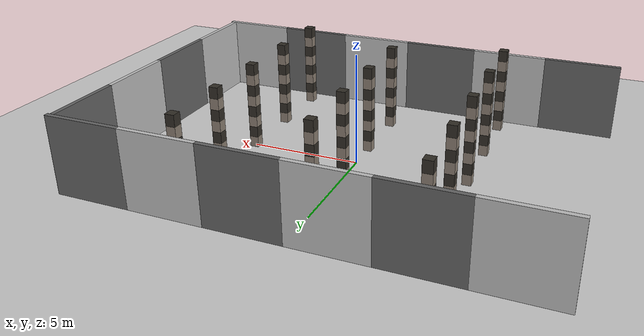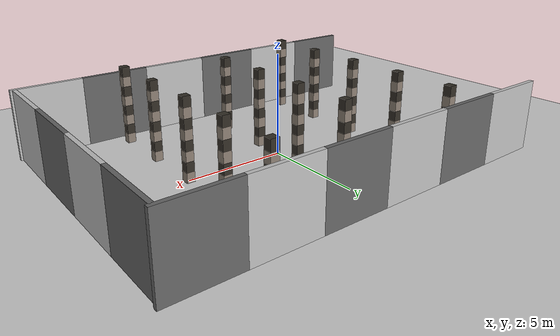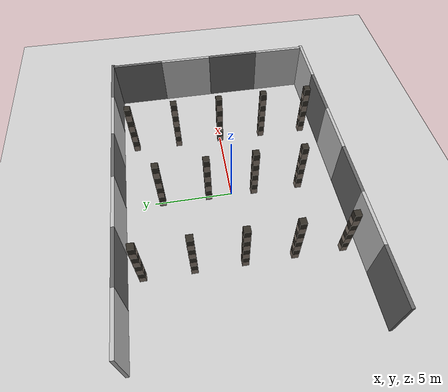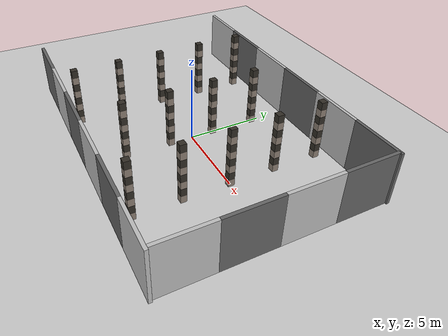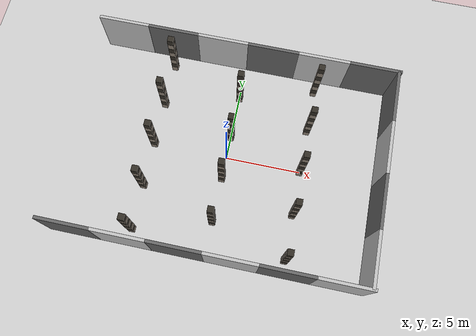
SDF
<sdf version="1.9">
 <world name="warehouse">
  <physics type="ode">
   <max_step_size>0.004</max_step_size>
   <real_time_factor>1.0</real_time_factor>
   <real_time_update_rate>250</real_time_update_rate>
  </physics>
  <gravity>0 0 -9.8</gravity>
  <magnetic_field>6e-06 2.3e-05 -4.2e-05</magnetic_field>
  <atmosphere type="adiabatic"/>
  <scene>
   <grid>false</grid>
   <ambient>0.4 0.4 0.4 1</ambient>
   <background>0.7 0.7 0.7 1</background>
   <shadows>true</shadows>
  </scene>
  <model name="ground_plane">
   <static>true</static>
   <link name="link">
    <collision name="collision">
     <geometry><plane><normal>0 0 1</normal><size>1 1</size></plane></geometry>
    </collision>
    <visual name="visual">
     <geometry><plane><normal>0 0 1</normal><size>100 100</size></plane></geometry>
     <material>
      <ambient>0.8 0.8 0.8 1</ambient>
      <diffuse>0.8 0.8 0.8 1</diffuse>
      <specular>0.8 0.8 0.8 1</specular>
     </material>
    </visual>
    <inertial>
     <mass>1</mass>
     <inertia><ixx>1</ixx><ixy>0</ixy><ixz>0</ixz><iyy>1</iyy><iyz>0</iyz><izz>1</izz></inertia>
    </inertial>
   </link>
  </model>
  <light name="sunUTC" type="directional">
   <pose>0 0 500 0 -0 0</pose>
   <intensity>1</intensity>
   <direction>0.001 0.625 -0.78</direction>
   <diffuse>0.904 0.904 0.904 1</diffuse>
   <specular>0.271 0.271 0.271 1</specular>
   <attenuation><range>2000</range><linear>0</linear><constant>1</constant><quadratic>0</quadratic></attenuation>
   <spot><inner_angle>0</inner_angle><outer_angle>0</outer_angle><falloff>0</falloff></spot>
  </light>
  <spherical_coordinates>
   <surface_model>EARTH_WGS84</surface_model>
   <world_frame_orientation>ENU</world_frame_orientation>
   <latitude_deg>47.397971057728974</latitude_deg>
   <longitude_deg>8.546163739800146</longitude_deg>
   <elevation>0</elevation>
  </spherical_coordinates>
  <model name="warehouse_walls">
   <static>true</static>
   <link name="north">
    <pose>0 7 1.75 0 0 0</pose>
    <collision name="collision"><geometry><box><size>20.4 0.2 3.5</size></box></geometry></collision>
    <visual name="band0">
     <pose>-8.5 0 0 0 0 0</pose>
     <geometry><box><size>3.4 0.2 3.5</size></box></geometry>
     <material><ambient>0.75 0.75 0.75 1</ambient><diffuse>0.75 0.75 0.75 1</diffuse></material>
    </visual>
    <visual name="band1">
     <pose>-5.1 0 0 0 0 0</pose>
     <geometry><box><size>3.4 0.2 3.5</size></box></geometry>
     <material><ambient>0.4 0.4 0.4 1</ambient><diffuse>0.4 0.4 0.4 1</diffuse></material>
    </visual>
    <visual name="band2">
     <pose>-1.7 0 0 0 0 0</pose>
     <geometry><box><size>3.4 0.2 3.5</size></box></geometry>
     <material><ambient>0.75 0.75 0.75 1</ambient><diffuse>0.75 0.75 0.75 1</diffuse></material>
    </visual>
    <visual name="band3">
     <pose>1.7 0 0 0 0 0</pose>
     <geometry><box><size>3.4 0.2 3.5</size></box></geometry>
     <material><ambient>0.4 0.4 0.4 1</ambient><diffuse>0.4 0.4 0.4 1</diffuse></material>
    </visual>
    <visual name="band4">
     <pose>5.1 0 0 0 0 0</pose>
     <geometry><box><size>3.4 0.2 3.5</size></box></geometry>
     <material><ambient>0.75 0.75 0.75 1</ambient><diffuse>0.75 0.75 0.75 1</diffuse></material>
    </visual>
    <visual name="band5">
     <pose>8.5 0 0 0 0 0</pose>
     <geometry><box><size>3.4 0.2 3.5</size></box></geometry>
     <material><ambient>0.4 0.4 0.4 1</ambient><diffuse>0.4 0.4 0.4 1</diffuse></material>
    </visual>
   </link>
   <link name="south">
    <pose>0 -7 1.75 0 0 0</pose>
    <collision name="collision"><geometry><box><size>20.4 0.2 3.5</size></box></geometry></collision>
    <visual name="band0">
     <pose>-8.5 0 0 0 0 0</pose>
     <geometry><box><size>3.4 0.2 3.5</size></box></geometry>
     <material><ambient>0.4 0.4 0.4 1</ambient><diffuse>0.4 0.4 0.4 1</diffuse></material>
    </visual>
    <visual name="band1">
     <pose>-5.1 0 0 0 0 0</pose>
     <geometry><box><size>3.4 0.2 3.5</size></box></geometry>
     <material><ambient>0.75 0.75 0.75 1</ambient><diffuse>0.75 0.75 0.75 1</diffuse></material>
    </visual>
    <visual name="band2">
     <pose>-1.7 0 0 0 0 0</pose>
     <geometry><box><size>3.4 0.2 3.5</size></box></geometry>
     <material><ambient>0.4 0.4 0.4 1</ambient><diffuse>0.4 0.4 0.4 1</diffuse></material>
    </visual>
    <visual name="band3">
     <pose>1.7 0 0 0 0 0</pose>
     <geometry><box><size>3.4 0.2 3.5</size></box></geometry>
     <material><ambient>0.75 0.75 0.75 1</ambient><diffuse>0.75 0.75 0.75 1</diffuse></material>
    </visual>
    <visual name="band4">
     <pose>5.1 0 0 0 0 0</pose>
     <geometry><box><size>3.4 0.2 3.5</size></box></geometry>
     <material><ambient>0.4 0.4 0.4 1</ambient><diffuse>0.4 0.4 0.4 1</diffuse></material>
    </visual>
    <visual name="band5">
     <pose>8.5 0 0 0 0 0</pose>
     <geometry><box><size>3.4 0.2 3.5</size></box></geometry>
     <material><ambient>0.75 0.75 0.75 1</ambient><diffuse>0.75 0.75 0.75 1</diffuse></material>
    </visual>
   </link>
   <link name="east">
    <pose>10 0 1.75 0 0 0</pose>
    <collision name="collision"><geometry><box><size>0.2 14 3.5</size></box></geometry></collision>
    <visual name="band0">
     <pose>0 -5.25 0 0 0 0</pose>
     <geometry><box><size>0.2 3.5 3.5</size></box></geometry>
     <material><ambient>0.75 0.75 0.75 1</ambient><diffuse>0.75 0.75 0.75 1</diffuse></material>
    </visual>
    <visual name="band1">
     <pose>0 -1.75 0 0 0 0</pose>
     <geometry><box><size>0.2 3.5 3.5</size></box></geometry>
     <material><ambient>0.4 0.4 0.4 1</ambient><diffuse>0.4 0.4 0.4 1</diffuse></material>
    </visual>
    <visual name="band2">
     <pose>0 1.75 0 0 0 0</pose>
     <geometry><box><size>0.2 3.5 3.5</size></box></geometry>
     <material><ambient>0.75 0.75 0.75 1</ambient><diffuse>0.75 0.75 0.75 1</diffuse></material>
    </visual>
    <visual name="band3">
     <pose>0 5.25 0 0 0 0</pose>
     <geometry><box><size>0.2 3.5 3.5</size></box></geometry>
     <material><ambient>0.4 0.4 0.4 1</ambient><diffuse>0.4 0.4 0.4 1</diffuse></material>
    </visual>
   </link>
  </model>
  <include><uri>model://warehouse_pillar</uri><name>pillar_a0</name><pose>-5 -6.0 2.0 0 0 0</pose></include>
  <include><uri>model://warehouse_pillar</uri><name>pillar_a1</name><pose>-5 -3.0 2.0 0 0 0</pose></include>
  <include><uri>model://warehouse_pillar</uri><name>pillar_a2</name><pose>-5  0.0 2.0 0 0 0</pose></include>
  <include><uri>model://warehouse_pillar</uri><name>pillar_a3</name><pose>-5  3.0 2.0 0 0 0</pose></include>
  <include><uri>model://warehouse_pillar</uri><name>pillar_a4</name><pose>-5  6.0 2.0 0 0 0</pose></include>
  <include><uri>model://warehouse_pillar</uri><name>pillar_b0</name><pose>0 -4.5 2.0 0 0 0</pose></include>
  <include><uri>model://warehouse_pillar</uri><name>pillar_b1</name><pose>0 -1.5 2.0 0 0 0</pose></include>
  <include><uri>model://warehouse_pillar</uri><name>pillar_b2</name><pose>0  1.5 2.0 0 0 0</pose></include>
  <include><uri>model://warehouse_pillar</uri><name>pillar_b3</name><pose>0  4.5 2.0 0 0 0</pose></include>
  <include><uri>model://warehouse_pillar</uri><name>pillar_c0</name><pose>5 -6.0 2.0 0 0 0</pose></include>
  <include><uri>model://warehouse_pillar</uri><name>pillar_c1</name><pose>5 -3.0 2.0 0 0 0</pose></include>
  <include><uri>model://warehouse_pillar</uri><name>pillar_c2</name><pose>5  0.0 2.0 0 0 0</pose></include>
  <include><uri>model://warehouse_pillar</uri><name>pillar_c3</name><pose>5  3.0 2.0 0 0 0</pose></include>
  <include><uri>model://warehouse_pillar</uri><name>pillar_c4</name><pose>5  6.0 2.0 0 0 0</pose></include>
 </world>
</sdf>

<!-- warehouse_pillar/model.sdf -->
<sdf version='1.9'>
  <model name='warehouse_pillar'>
    <static>true</static>
    <link name='link'>
      <collision name='collision'>
        <geometry>
          <box><size>0.4 0.4 4.0</size></box>
        </geometry>
      </collision>
      <visual name='band0'>
        <pose>0 0 -1.75 0 0 0</pose>
        <geometry><box><size>0.4 0.4 0.5</size></box></geometry>
        <material>
          <ambient>0.55 0.5 0.45 1</ambient>
          <diffuse>0.55 0.5 0.45 1</diffuse>
          <specular>0.2 0.2 0.2 1</specular>
        </material>
      </visual>
      <visual name='band1'>
        <pose>0 0 -1.25 0 0 0</pose>
        <geometry><box><size>0.4 0.4 0.5</size></box></geometry>
        <material>
          <ambient>0.2 0.18 0.15 1</ambient>
          <diffuse>0.2 0.18 0.15 1</diffuse>
          <specular>0.2 0.2 0.2 1</specular>
        </material>
      </visual>
      <visual name='band2'>
        <pose>0 0 -0.75 0 0 0</pose>
        <geometry><box><size>0.4 0.4 0.5</size></box></geometry>
        <material>
          <ambient>0.55 0.5 0.45 1</ambient>
          <diffuse>0.55 0.5 0.45 1</diffuse>
          <specular>0.2 0.2 0.2 1</specular>
        </material>
      </visual>
      <visual name='band3'>
        <pose>0 0 -0.25 0 0 0</pose>
        <geometry><box><size>0.4 0.4 0.5</size></box></geometry>
        <material>
          <ambient>0.2 0.18 0.15 1</ambient>
          <diffuse>0.2 0.18 0.15 1</diffuse>
          <specular>0.2 0.2 0.2 1</specular>
        </material>
      </visual>
      <visual name='band4'>
        <pose>0 0 0.25 0 0 0</pose>
        <geometry><box><size>0.4 0.4 0.5</size></box></geometry>
        <material>
          <ambient>0.55 0.5 0.45 1</ambient>
          <diffuse>0.55 0.5 0.45 1</diffuse>
          <specular>0.2 0.2 0.2 1</specular>
        </material>
      </visual>
      <visual name='band5'>
        <pose>0 0 0.75 0 0 0</pose>
        <geometry><box><size>0.4 0.4 0.5</size></box></geometry>
        <material>
          <ambient>0.2 0.18 0.15 1</ambient>
          <diffuse>0.2 0.18 0.15 1</diffuse>
          <specular>0.2 0.2 0.2 1</specular>
        </material>
      </visual>
      <visual name='band6'>
        <pose>0 0 1.25 0 0 0</pose>
        <geometry><box><size>0.4 0.4 0.5</size></box></geometry>
        <material>
          <ambient>0.55 0.5 0.45 1</ambient>
          <diffuse>0.55 0.5 0.45 1</diffuse>
          <specular>0.2 0.2 0.2 1</specular>
        </material>
      </visual>
      <visual name='band7'>
        <pose>0 0 1.75 0 0 0</pose>
        <geometry><box><size>0.4 0.4 0.5</size></box></geometry>
        <material>
          <ambient>0.2 0.18 0.15 1</ambient>
          <diffuse>0.2 0.18 0.15 1</diffuse>
          <specular>0.2 0.2 0.2 1</specular>
        </material>
      </visual>
    </link>
  </model>
</sdf>
